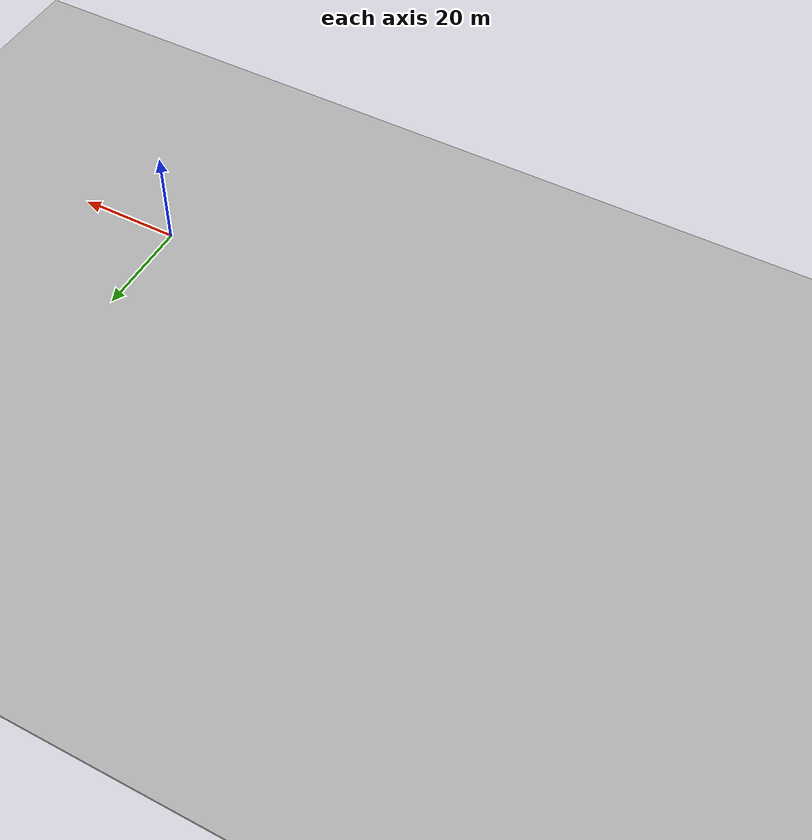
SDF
<?xml version="1.0" ?>
<sdf version="1.4">
	<world name="default">

		<!-- Physics variables -->

		<physics type='ode'>
		      <gravity>0 0 -9.81</gravity>
			<ode>
				<solver>
			          <use_dynamic_moi_rescaling>true</use_dynamic_moi_rescaling>
					<type>quick</type>
					<iters>50</iters>
					<sor>1.0</sor>
				</solver>
				<constraints>
					<cfm>0.0</cfm>
					<erp>0.2</erp>
					<contact_max_correcting_vel>100.0</contact_max_correcting_vel>
					<contact_surface_layer>0.0</contact_surface_layer>
				</constraints>
			</ode>
			<max_step_size>0.001</max_step_size>
			<real_time_factor>1</real_time_factor>
			<real_time_update_rate>1000</real_time_update_rate>
		</physics>

		<!-- Include 8-Track -->
		<include>
			<uri>model://mbzirc</uri>
		</include>
		<!-- Include ground color -->
		<include>
	    		<uri>model://cricket_ground</uri>
	  	</include>
	  	<!-- Include Sun -->
		<include>
			<uri>model://sun</uri>
		</include>

		<!-- camera position -->
		<gui>
	      	<camera name="user_camera">
	        		<pose>-65 25 50 0 1.57075 1.57075 </pose>
	      	</camera>
	    </gui>
		<!-- Starting Area Model -->

		<model name='start_area'>
			<static>true</static>
			<pose>0 0 0.002 0 0 0</pose>
			<link name='link'>
				<visual name='visual'>
					<cast_shadows>false</cast_shadows>
					<geometry>
					      <plane>
						      <normal>0 0 1</normal>
						      <size>10 10</size>
					      </plane>
				    	</geometry>
				    	<material>
					      <script>
							<uri>file://media/materials/scripts/gazebo.material</uri>
							<name>Gazebo/Grey</name>
					      </script>
				     </material>
			  	</visual>
				<self_collide>false</self_collide>
				<kinematic>false</kinematic>
				<gravity>true</gravity>
			</link>
		</model>

		<!-- Challange Area -->

		<model name='main_area'>
			<static>true</static>
			<pose>-65 25 0.001 0 -0 0</pose>
			<link name='link'>
		    		<visual name='visual'>
		      		<cast_shadows>false</cast_shadows>
			      	<geometry>
				        	<plane>
					          	<normal>0 0 1</normal>
					          	<size>100 60</size>
				        	</plane>
				      </geometry>
		      		<material>
		        		<script>
		      			<uri>model://cricket_ground/materials/scripts</uri>
		      			<uri>model://cricket_ground/materials/textures</uri>
		      			<name>cricket_ground/Image</name>
		        		</script>
		      		</material>
		    		</visual>
		    		<self_collide>false</self_collide>
		    		<kinematic>false</kinematic>
		    		<gravity>true</gravity>
	  		</link>
		</model>

		<!-- Droping Area Model -->

		<model name='drop_area'>
		 	<static>true</static>
			<pose>-130 50 0.002 0 -0 0</pose>
		      	<link name='link'>
		      		<visual name='visual'>
			        		<cast_shadows>false</cast_shadows>
			        		<geometry>
		          				<plane>
		            				<normal>0 0 1</normal>
		            				<size>10 10</size>
		          				</plane>
		        			</geometry>
		        			<material>
			          			<script>
			            			<uri>file://media/materials/scripts/gazebo.material</uri>
						           <name>Gazebo/Grey</name>
						      </script>
		        			</material>
		      		</visual>
				      <self_collide>false</self_collide>
				      <kinematic>false</kinematic>
				      <gravity>true</gravity>
		    		</link>
		</model>

	  	<!-- Include square -->
		<include>
      		<pose>-67 27 0.05 0 0 0</pose>
			<uri>model://square_obj</uri>
		</include>

	  	<!-- Include square -->
		<include>
      		<pose>-67 23 0.05 0 0 0</pose>
			<uri>model://rectangle_obj</uri>
		</include>

	  	<!-- Include square -->
		<include>
      		<pose>-63 25 0.05 0 0 0</pose>
			<uri>model://circle_obj</uri>
		</include>

		<!-- ardupilot sitl gazebo model plugin -->

	    	<plugin name="ardupilot_sitl_gazebo_plugin" filename="libardupilot_sitl_gazebo_plugin.so">
			<UAV_MODEL>erlecopter</UAV_MODEL>
	    	</plugin>
	</world>
</sdf>

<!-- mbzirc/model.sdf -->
<sdf version="1.5">
	<model name="mbzirc">
	    	<static>true</static>
		<pose>-115 55 0.01 0 -0 0</pose>
           <allow_auto_disable>true</allow_auto_disable>
	    	<link name="link_track">
			<pose>0 0 0 0 0 0</pose>
			<gravity>true</gravity>
			<self_collide>false</self_collide>
			<kinematic>false</kinematic>
		      <visual name="visual_track">
				<pose>0 0 0 0 0 0</pose>
		      	<geometry>
		           		<mesh>
		            		<uri>model://mbzirc/meshes/track.stl</uri>
		          			<scale>100 100 100</scale>
		          		</mesh>
		        	</geometry>
			      <material>Gazebo/Blue</material>
		     </visual>
	    </link>
	</model>
</sdf>

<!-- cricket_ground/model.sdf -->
<sdf version="1.4">
	<model name="cricket_ground">
		<static>true</static>
		<link name="link">
			<collision name="collision">
		      	<geometry>
		        		<plane>
		          			<normal>0 0 1</normal>
		          			<size>500 500</size>
		        		</plane>
		      	</geometry>
		      	<surface>
		        		<friction>
			          		<ode>
			            		<mu>100</mu>
			            		<mu2>50</mu2>
			          		</ode>
		        		</friction>
		      	</surface>
		    	</collision>
		    	<visual name="visual">
		     		<cast_shadows>false</cast_shadows>
		      	<geometry>
		        		<plane>
		          			<normal>0 0 1</normal>
		          			<size>500 500</size>
		        		</plane>
		      	</geometry>
		      	<material>
		        		<script>
		      			<uri>model://cricket_ground/materials/scripts</uri>
		      			<uri>model://cricket_ground/materials/textures</uri>
		      			<name>cricket_ground/Image</name>
		    		</script>
		      	</material>
		    </visual>
		</link>
	</model>
</sdf>

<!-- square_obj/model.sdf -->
<sdf version="1.5">
	<model name="square_obj">
    		<link name="link">
	      		<visual name="visual">
					<geometry>
						<box>
							<size>.3 .3 .2</size>
						</box>
					</geometry>
					<material>
						<script>
							<name>Gazebo/Blue</name>
						</script>
					</material>
	      		</visual>
				<collision name="collision">
					<geometry>
						<box>
							<size>.3 .3 .2</size>
						</box>
					</geometry>
				</collision>
    			</link>
  	</model>
</sdf>

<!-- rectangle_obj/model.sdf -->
<sdf version="1.5">
	<model name="rectangle_obj">
    		<link name="link">
      		<visual name="visual">
				<geometry>
					<box>
						<size>2 .3 .2</size>
					</box>
				</geometry>
				<material>
					<script>
						<name>Gazebo/Black</name>
					</script>
				</material>
      		</visual>
			<collision name="collision">
				<geometry>
					<box>
						<size>2 .3 .2</size>
					</box>
				</geometry>
			</collision>
		</link>
  	</model>
</sdf>

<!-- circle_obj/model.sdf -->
<sdf version="1.5">
	<model name="circle_obj">
		<link name='link'>
	      		<visual name="visual">
					<geometry>
						<box>
							<size>.3 .3 .2</size>
						</box>
					</geometry>
					<material>
						<script>
							<name>Gazebo/Red</name>
						</script>
					</material>
	      		</visual>
				<collision name="collision">
					<geometry>
						<box>
							<size>.3 .3 .2</size>
						</box>
					</geometry>
				</collision>
    			</link>
  	</model>
</sdf>
